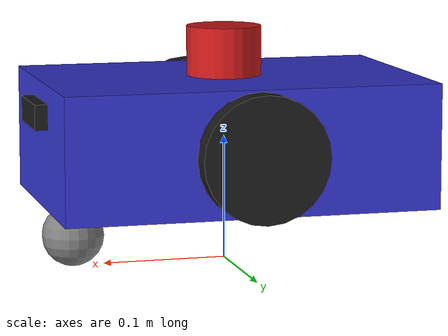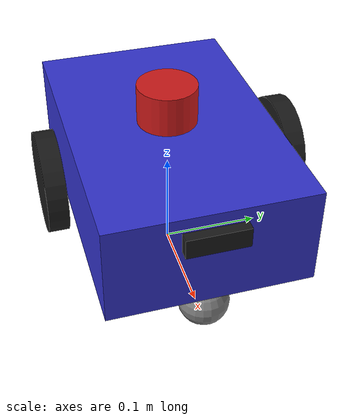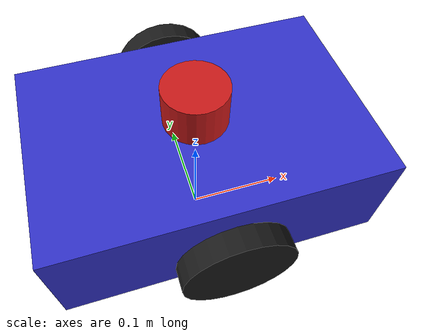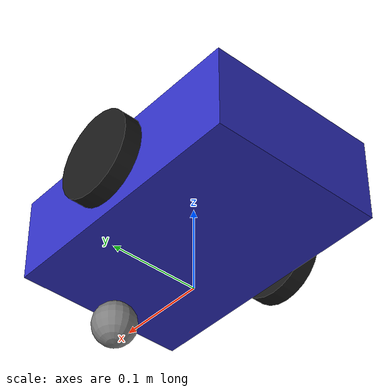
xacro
<?xml version="1.0"?>
<robot xmlns:xacro="http://www.ros.org/wiki/xacro" name="my_robot">

  <!-- ===== Properties (C言語の #define に相当) ===== -->
  <xacro:property name="body_length" value="0.30"/>
  <xacro:property name="body_width" value="0.20"/>
  <xacro:property name="body_height" value="0.10"/>
  <xacro:property name="body_mass" value="5.0"/>

  <xacro:property name="wheel_radius" value="0.05"/>
  <xacro:property name="wheel_width" value="0.02"/>
  <xacro:property name="wheel_mass" value="0.5"/>
  <xacro:property name="wheel_separation" value="0.24"/>

  <xacro:property name="caster_radius" value="0.025"/>
  <xacro:property name="caster_mass" value="0.1"/>

  <!-- ===== Materials ===== -->
  <material name="blue">
    <color rgba="0.2 0.2 0.8 1.0"/>
  </material>
  <material name="black">
    <color rgba="0.1 0.1 0.1 1.0"/>
  </material>
  <material name="grey">
    <color rgba="0.5 0.5 0.5 1.0"/>
  </material>
  <material name="red">
    <color rgba="0.8 0.1 0.1 1.0"/>
  </material>

  <!-- ===== Inertia macros (慣性テンソル計算マクロ) ===== -->
  <xacro:macro name="box_inertia" params="m x y z">
    <inertial>
      <mass value="${m}"/>
      <inertia ixx="${m*(y*y+z*z)/12}" ixy="0" ixz="0"
               iyy="${m*(x*x+z*z)/12}" iyz="0"
               izz="${m*(x*x+y*y)/12}"/>
    </inertial>
  </xacro:macro>

  <xacro:macro name="cylinder_inertia" params="m r h">
    <inertial>
      <mass value="${m}"/>
      <inertia ixx="${m*(3*r*r+h*h)/12}" ixy="0" ixz="0"
               iyy="${m*(3*r*r+h*h)/12}" iyz="0"
               izz="${m*r*r/2}"/>
    </inertial>
  </xacro:macro>

  <xacro:macro name="sphere_inertia" params="m r">
    <inertial>
      <mass value="${m}"/>
      <inertia ixx="${2*m*r*r/5}" ixy="0" ixz="0"
               iyy="${2*m*r*r/5}" iyz="0"
               izz="${2*m*r*r/5}"/>
    </inertial>
  </xacro:macro>

  <!-- ===== Wheel macro (左右で再利用) ===== -->
  <xacro:macro name="wheel" params="prefix reflect">
    <link name="${prefix}_wheel">
      <visual>
        <geometry>
          <cylinder radius="${wheel_radius}" length="${wheel_width}"/>
        </geometry>
        <material name="black"/>
      </visual>
      <collision>
        <geometry>
          <cylinder radius="${wheel_radius}" length="${wheel_width}"/>
        </geometry>
      </collision>
      <xacro:cylinder_inertia m="${wheel_mass}" r="${wheel_radius}" h="${wheel_width}"/>
    </link>

    <joint name="${prefix}_wheel_joint" type="continuous">
      <parent link="base_link"/>
      <child link="${prefix}_wheel"/>
      <origin xyz="0.0 ${reflect * wheel_separation / 2} 0.0" rpy="${-pi/2} 0 0"/>
      <axis xyz="0 0 1"/>
    </joint>
  </xacro:macro>

  <!-- ===== Base Link (ロボット本体) ===== -->
  <link name="base_footprint"/>

  <link name="base_link">
    <visual>
      <geometry>
        <box size="${body_length} ${body_width} ${body_height}"/>
      </geometry>
      <material name="blue"/>
    </visual>
    <collision>
      <geometry>
        <box size="${body_length} ${body_width} ${body_height}"/>
      </geometry>
    </collision>
    <xacro:box_inertia m="${body_mass}" x="${body_length}" y="${body_width}" z="${body_height}"/>
  </link>

  <joint name="base_joint" type="fixed">
    <parent link="base_footprint"/>
    <child link="base_link"/>
    <origin xyz="0.0 0.0 ${wheel_radius + body_height/2}" rpy="0 0 0"/>
  </joint>

  <!-- ===== Wheels (マクロ展開) ===== -->
  <xacro:wheel prefix="left" reflect="1"/>
  <xacro:wheel prefix="right" reflect="-1"/>

  <!-- ===== Caster (前輪キャスター) ===== -->
  <link name="caster_wheel">
    <visual>
      <geometry>
        <sphere radius="${caster_radius}"/>
      </geometry>
      <material name="grey"/>
    </visual>
    <collision>
      <geometry>
        <sphere radius="${caster_radius}"/>
      </geometry>
    </collision>
    <xacro:sphere_inertia m="${caster_mass}" r="${caster_radius}"/>
  </link>

  <joint name="caster_joint" type="fixed">
    <parent link="base_link"/>
    <child link="caster_wheel"/>
    <origin xyz="${body_length/2 - caster_radius} 0.0 ${-body_height/2 - wheel_radius + caster_radius}" rpy="0 0 0"/>
  </joint>

  <!-- ===== LiDAR センサー ===== -->
  <link name="lidar_link">
    <visual>
      <geometry>
        <cylinder radius="0.03" length="0.04"/>
      </geometry>
      <material name="red"/>
    </visual>
    <collision>
      <geometry>
        <cylinder radius="0.03" length="0.04"/>
      </geometry>
    </collision>
    <xacro:cylinder_inertia m="0.1" r="0.03" h="0.04"/>
  </link>

  <joint name="lidar_joint" type="fixed">
    <parent link="base_link"/>
    <child link="lidar_link"/>
    <origin xyz="0.0 0.0 ${body_height/2 + 0.02}" rpy="0 0 0"/>
  </joint>

  <!-- ===== Camera センサー ===== -->
  <link name="camera_link">
    <visual>
      <geometry>
        <box size="0.02 0.06 0.02"/>
      </geometry>
      <material name="black"/>
    </visual>
    <collision>
      <geometry>
        <box size="0.02 0.06 0.02"/>
      </geometry>
    </collision>
    <xacro:box_inertia m="0.05" x="0.02" y="0.06" z="0.02"/>
  </link>

  <joint name="camera_joint" type="fixed">
    <parent link="base_link"/>
    <child link="camera_link"/>
    <origin xyz="${body_length/2} 0.0 ${body_height/4}" rpy="0 0 0"/>
  </joint>

  <!-- camera optical frame (ROS 標準: Z前方, X右, Y下) -->
  <link name="camera_optical_link"/>
  <joint name="camera_optical_joint" type="fixed">
    <parent link="camera_link"/>
    <child link="camera_optical_link"/>
    <origin xyz="0 0 0" rpy="${-pi/2} 0 ${-pi/2}"/>
  </joint>

  <!-- ===== IMU センサー ===== -->
  <link name="imu_link">
    <visual>
      <geometry>
        <box size="0.02 0.02 0.01"/>
      </geometry>
      <material name="grey"/>
    </visual>
    <xacro:box_inertia m="0.01" x="0.02" y="0.02" z="0.01"/>
  </link>

  <joint name="imu_joint" type="fixed">
    <parent link="base_link"/>
    <child link="imu_link"/>
    <origin xyz="0.0 0.0 ${body_height/2}" rpy="0 0 0"/>
  </joint>

  <!-- ===== Gazebo プラグイン ===== -->

  <!-- 差動駆動コントローラ -->
  <gazebo>
    <plugin name="diff_drive" filename="libgazebo_ros_diff_drive.so">
      <ros>
        <namespace>/</namespace>
      </ros>
      <left_joint>left_wheel_joint</left_joint>
      <right_joint>right_wheel_joint</right_joint>
      <wheel_separation>${wheel_separation}</wheel_separation>
      <wheel_diameter>${wheel_radius * 2}</wheel_diameter>
      <max_wheel_torque>20</max_wheel_torque>
      <max_wheel_acceleration>1.0</max_wheel_acceleration>
      <command_topic>cmd_vel</command_topic>
      <publish_odom>true</publish_odom>
      <publish_odom_tf>true</publish_odom_tf>
      <publish_wheel_tf>true</publish_wheel_tf>
      <odometry_topic>odom</odometry_topic>
      <odometry_frame>odom</odometry_frame>
      <robot_base_frame>base_footprint</robot_base_frame>
    </plugin>
  </gazebo>

  <!-- LiDAR (2D laser scanner) -->
  <gazebo reference="lidar_link">
    <sensor type="ray" name="lidar">
      <always_on>true</always_on>
      <update_rate>10</update_rate>
      <visualize>true</visualize>
      <ray>
        <scan>
          <horizontal>
            <samples>360</samples>
            <resolution>1</resolution>
            <min_angle>-3.14159</min_angle>
            <max_angle>3.14159</max_angle>
          </horizontal>
        </scan>
        <range>
          <min>0.12</min>
          <max>10.0</max>
          <resolution>0.01</resolution>
        </range>
        <noise>
          <type>gaussian</type>
          <mean>0.0</mean>
          <stddev>0.01</stddev>
        </noise>
      </ray>
      <plugin name="scan" filename="libgazebo_ros_ray_sensor.so">
        <ros>
          <remapping>~/out:=scan</remapping>
        </ros>
        <output_type>sensor_msgs/LaserScan</output_type>
        <frame_name>lidar_link</frame_name>
      </plugin>
    </sensor>
  </gazebo>

  <!-- Camera -->
  <gazebo reference="camera_link">
    <sensor type="camera" name="camera">
      <always_on>true</always_on>
      <update_rate>15</update_rate>
      <visualize>false</visualize>
      <camera>
        <horizontal_fov>1.3962634</horizontal_fov>
        <image>
          <width>640</width>
          <height>480</height>
          <format>R8G8B8</format>
        </image>
        <clip>
          <near>0.02</near>
          <far>300</far>
        </clip>
      </camera>
      <plugin name="camera" filename="libgazebo_ros_camera.so">
        <ros>
          <remapping>~/image_raw:=camera/image_raw</remapping>
          <remapping>~/camera_info:=camera/camera_info</remapping>
        </ros>
        <camera_name>camera</camera_name>
        <frame_name>camera_optical_link</frame_name>
      </plugin>
    </sensor>
  </gazebo>

  <!-- IMU -->
  <gazebo reference="imu_link">
    <sensor type="imu" name="imu">
      <always_on>true</always_on>
      <update_rate>100</update_rate>
      <imu>
        <angular_velocity>
          <x><noise type="gaussian"><mean>0.0</mean><stddev>0.0002</stddev></noise></x>
          <y><noise type="gaussian"><mean>0.0</mean><stddev>0.0002</stddev></noise></y>
          <z><noise type="gaussian"><mean>0.0</mean><stddev>0.0002</stddev></noise></z>
        </angular_velocity>
        <linear_acceleration>
          <x><noise type="gaussian"><mean>0.0</mean><stddev>0.017</stddev></noise></x>
          <y><noise type="gaussian"><mean>0.0</mean><stddev>0.017</stddev></noise></y>
          <z><noise type="gaussian"><mean>0.0</mean><stddev>0.017</stddev></noise></z>
        </linear_acceleration>
      </imu>
      <plugin name="imu" filename="libgazebo_ros_imu_sensor.so">
        <ros>
          <remapping>~/out:=imu</remapping>
        </ros>
        <frame_name>imu_link</frame_name>
      </plugin>
    </sensor>
  </gazebo>

  <!-- Friction for wheels -->
  <gazebo reference="left_wheel">
    <mu1>1.0</mu1>
    <mu2>1.0</mu2>
    <kp>500000.0</kp>
    <kd>10.0</kd>
  </gazebo>
  <gazebo reference="right_wheel">
    <mu1>1.0</mu1>
    <mu2>1.0</mu2>
    <kp>500000.0</kp>
    <kd>10.0</kd>
  </gazebo>
  <gazebo reference="caster_wheel">
    <mu1>0.1</mu1>
    <mu2>0.1</mu2>
    <kp>500000.0</kp>
    <kd>10.0</kd>
  </gazebo>

</robot>
